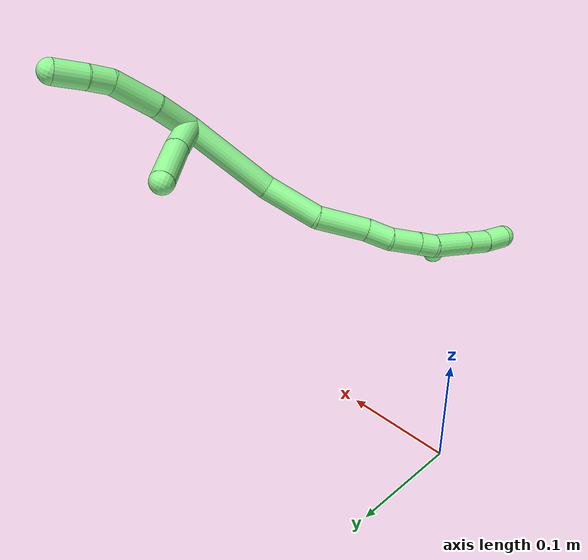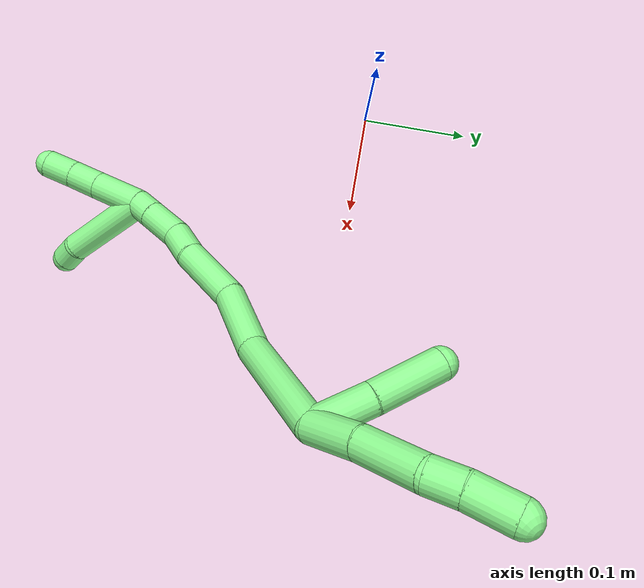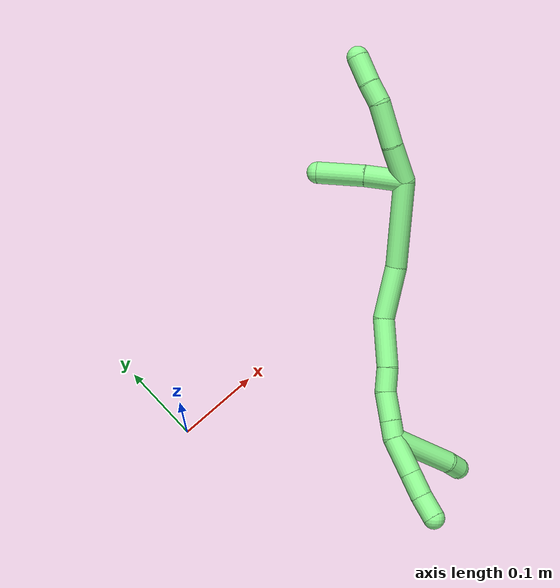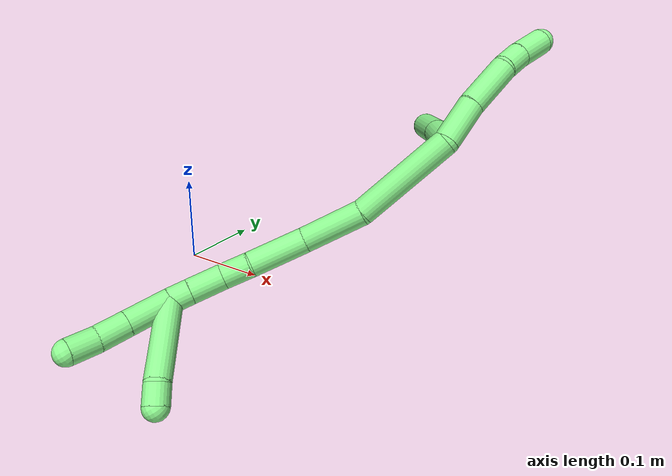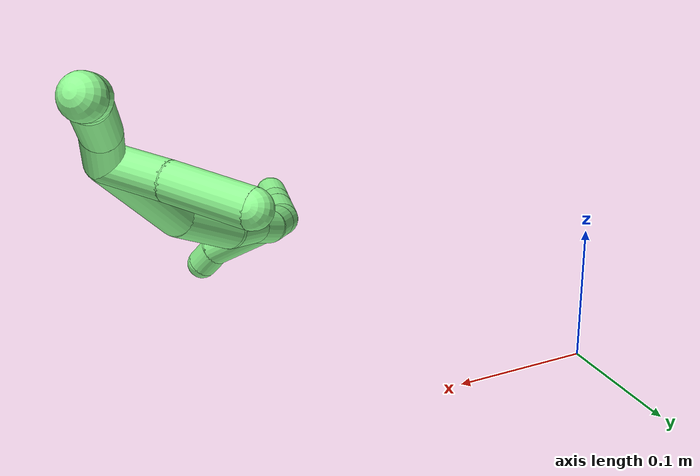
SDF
<sdf version="1.7">
 <world name="default">
  <model name="13">
   <static>0</static>
   <link name="13">
    <collision name="collision-cylinder-e_1_2_8">
     <pose>-0.00568 0.008277 0.019201 -0.407004 -0.26526 0.055048</pose>
     <geometry><cylinder><radius>0.0125</radius><length>0.043334</length></cylinder></geometry>
     <surface>
      <friction><ode><mu>1.16</mu><mu2>1.16</mu2><slip1>0</slip1><slip2>0</slip2></ode></friction>
      <contact><ode><kp>1e+06</kp><kd>1</kd><max_vel>0</max_vel><min_depth>0.001</min_depth></ode></contact>
     </surface>
    </collision>
    <visual name="visual-cylinder-e_1_2_8">
     <pose>-0.00568 0.008277 0.019201 -0.407004 -0.26526 0.055048</pose>
     <geometry><cylinder><radius>0.0125</radius><length>0.043334</length></cylinder></geometry>
     <material><ambient>0.564706 0.984314 0.572549 1</ambient></material>
    </visual>
    <collision name="collision-cylinder-e_2_8_9">
     <pose>-0.015317 0.025007 0.061554 -0.350073 -0.159155 0.028204</pose>
     <geometry><cylinder><radius>0.0125</radius><length>0.049923</length></cylinder></geometry>
     <surface>
      <friction><ode><mu>1.16</mu><mu2>1.16</mu2><slip1>0</slip1><slip2>0</slip2></ode></friction>
      <contact><ode><kp>1e+06</kp><kd>1</kd><max_vel>0</max_vel><min_depth>0.001</min_depth></ode></contact>
     </surface>
    </collision>
    <visual name="visual-cylinder-e_2_8_9">
     <pose>-0.015317 0.025007 0.061554 -0.350073 -0.159155 0.028204</pose>
     <geometry><cylinder><radius>0.0125</radius><length>0.049923</length></cylinder></geometry>
     <material><ambient>0.564706 0.984314 0.572549 1</ambient></material>
    </visual>
    <collision name="collision-cylinder-e_3_9_10">
     <pose>-0.018282 0.039383 0.095146 -0.516027 0.082336 -0.02174</pose>
     <geometry><cylinder><radius>0.0125</radius><length>0.024089</length></cylinder></geometry>
     <surface>
      <friction><ode><mu>1.16</mu><mu2>1.16</mu2><slip1>0</slip1><slip2>0</slip2></ode></friction>
      <contact><ode><kp>1e+06</kp><kd>1</kd><max_vel>0</max_vel><min_depth>0.001</min_depth></ode></contact>
     </surface>
    </collision>
    <visual name="visual-cylinder-e_3_9_10">
     <pose>-0.018282 0.039383 0.095146 -0.516027 0.082336 -0.02174</pose>
     <geometry><cylinder><radius>0.0125</radius><length>0.024089</length></cylinder></geometry>
     <material><ambient>0.564706 0.984314 0.572549 1</ambient></material>
    </visual>
    <collision name="collision-cylinder-e_4_10_6">
     <pose>-0.014629 0.052081 0.120201 -0.434086 0.163769 -0.036191</pose>
     <geometry><cylinder><radius>0.0125</radius><length>0.032654</length></cylinder></geometry>
     <surface>
      <friction><ode><mu>1.16</mu><mu2>1.16</mu2><slip1>0</slip1><slip2>0</slip2></ode></friction>
      <contact><ode><kp>1e+06</kp><kd>1</kd><max_vel>0</max_vel><min_depth>0.001</min_depth></ode></contact>
     </surface>
    </collision>
    <visual name="visual-cylinder-e_4_10_6">
     <pose>-0.014629 0.052081 0.120201 -0.434086 0.163769 -0.036191</pose>
     <geometry><cylinder><radius>0.0125</radius><length>0.032654</length></cylinder></geometry>
     <material><ambient>0.564706 0.984314 0.572549 1</ambient></material>
    </visual>
    <collision name="collision-cylinder-e_1_2_11">
     <pose>0.00458 0.021912 0.002322 -1.4652 0.204929 -0.184479</pose>
     <geometry><cylinder><radius>0.0125</radius><length>0.045011</length></cylinder></geometry>
     <surface>
      <friction><ode><mu>1.16</mu><mu2>1.16</mu2><slip1>0</slip1><slip2>0</slip2></ode></friction>
      <contact><ode><kp>1e+06</kp><kd>1</kd><max_vel>0</max_vel><min_depth>0.001</min_depth></ode></contact>
     </surface>
    </collision>
    <visual name="visual-cylinder-e_1_2_11">
     <pose>0.00458 0.021912 0.002322 -1.4652 0.204929 -0.184479</pose>
     <geometry><cylinder><radius>0.0125</radius><length>0.045011</length></cylinder></geometry>
     <material><ambient>0.564706 0.984314 0.572549 1</ambient></material>
    </visual>
    <collision name="collision-cylinder-e_2_11_5">
     <pose>0.015357 0.070588 0.005748 -1.5296 0.227347 -0.218242</pose>
     <geometry><cylinder><radius>0.0125</radius><length>0.054989</length></cylinder></geometry>
     <surface>
      <friction><ode><mu>1.16</mu><mu2>1.16</mu2><slip1>0</slip1><slip2>0</slip2></ode></friction>
      <contact><ode><kp>1e+06</kp><kd>1</kd><max_vel>0</max_vel><min_depth>0.001</min_depth></ode></contact>
     </surface>
    </collision>
    <visual name="visual-cylinder-e_2_11_5">
     <pose>0.015357 0.070588 0.005748 -1.5296 0.227347 -0.218242</pose>
     <geometry><cylinder><radius>0.0125</radius><length>0.054989</length></cylinder></geometry>
     <material><ambient>0.564706 0.984314 0.572549 1</ambient></material>
    </visual>
    <collision name="collision-cylinder-e_1_2_12">
     <pose>0.010299 0.001411 -0.049012 -3.1128 0.207033 -2.8662</pose>
     <geometry><cylinder><radius>0.0125</radius><length>0.100204</length></cylinder></geometry>
     <surface>
      <friction><ode><mu>1.16</mu><mu2>1.16</mu2><slip1>0</slip1><slip2>0</slip2></ode></friction>
      <contact><ode><kp>1e+06</kp><kd>1</kd><max_vel>0</max_vel><min_depth>0.001</min_depth></ode></contact>
     </surface>
    </collision>
    <visual name="visual-cylinder-e_1_2_12">
     <pose>0.010299 0.001411 -0.049012 -3.1128 0.207033 -2.8662</pose>
     <geometry><cylinder><radius>0.0125</radius><length>0.100204</length></cylinder></geometry>
     <material><ambient>0.564706 0.984314 0.572549 1</ambient></material>
    </visual>
    <collision name="collision-cylinder-e_2_12_13">
     <pose>0.020945 0.008719 -0.128198 -2.94861 0.011288 -0.116489</pose>
     <geometry><cylinder><radius>0.0125</radius><length>0.061494</length></cylinder></geometry>
     <surface>
      <friction><ode><mu>1.16</mu><mu2>1.16</mu2><slip1>0</slip1><slip2>0</slip2></ode></friction>
      <contact><ode><kp>1e+06</kp><kd>1</kd><max_vel>0</max_vel><min_depth>0.001</min_depth></ode></contact>
     </surface>
    </collision>
    <visual name="visual-cylinder-e_2_12_13">
     <pose>0.020945 0.008719 -0.128198 -2.94861 0.011288 -0.116489</pose>
     <geometry><cylinder><radius>0.0125</radius><length>0.061494</length></cylinder></geometry>
     <material><ambient>0.564706 0.984314 0.572549 1</ambient></material>
    </visual>
    <collision name="collision-cylinder-e_3_13_14">
     <pose>0.016526 0.011888 -0.18607 3.04344 -0.169585 -2.09365</pose>
     <geometry><cylinder><radius>0.0125</radius><length>0.056475</length></cylinder></geometry>
     <surface>
      <friction><ode><mu>1.16</mu><mu2>1.16</mu2><slip1>0</slip1><slip2>0</slip2></ode></friction>
      <contact><ode><kp>1e+06</kp><kd>1</kd><max_vel>0</max_vel><min_depth>0.001</min_depth></ode></contact>
     </surface>
    </collision>
    <visual name="visual-cylinder-e_3_13_14">
     <pose>0.016526 0.011888 -0.18607 3.04344 -0.169585 -2.09365</pose>
     <geometry><cylinder><radius>0.0125</radius><length>0.056475</length></cylinder></geometry>
     <material><ambient>0.564706 0.984314 0.572549 1</ambient></material>
    </visual>
    <collision name="collision-cylinder-e_4_14_15">
     <pose>0.010256 0.009921 -0.227781 -3.08738 -0.106762 2.20236</pose>
     <geometry><cylinder><radius>0.0125</radius><length>0.028226</length></cylinder></geometry>
     <surface>
      <friction><ode><mu>1.16</mu><mu2>1.16</mu2><slip1>0</slip1><slip2>0</slip2></ode></friction>
      <contact><ode><kp>1e+06</kp><kd>1</kd><max_vel>0</max_vel><min_depth>0.001</min_depth></ode></contact>
     </surface>
    </collision>
    <visual name="visual-cylinder-e_4_14_15">
     <pose>0.010256 0.009921 -0.227781 -3.08738 -0.106762 2.20236</pose>
     <geometry><cylinder><radius>0.0125</radius><length>0.028226</length></cylinder></geometry>
     <material><ambient>0.564706 0.984314 0.572549 1</ambient></material>
    </visual>
    <collision name="collision-cylinder-e_5_15_16">
     <pose>0.005148 0.007489 -0.257858 2.94541 -0.216592 -1.67028</pose>
     <geometry><cylinder><radius>0.0125</radius><length>0.033541</length></cylinder></geometry>
     <surface>
      <friction><ode><mu>1.16</mu><mu2>1.16</mu2><slip1>0</slip1><slip2>0</slip2></ode></friction>
      <contact><ode><kp>1e+06</kp><kd>1</kd><max_vel>0</max_vel><min_depth>0.001</min_depth></ode></contact>
     </surface>
    </collision>
    <visual name="visual-cylinder-e_5_15_16">
     <pose>0.005148 0.007489 -0.257858 2.94541 -0.216592 -1.67028</pose>
     <geometry><cylinder><radius>0.0125</radius><length>0.033541</length></cylinder></geometry>
     <material><ambient>0.564706 0.984314 0.572549 1</ambient></material>
    </visual>
    <collision name="collision-cylinder-e_6_16_1">
     <pose>-0.000494 0.002421 -0.283562 2.94948 -0.204625 -1.63426</pose>
     <geometry><cylinder><radius>0.0125</radius><length>0.02006</length></cylinder></geometry>
     <surface>
      <friction><ode><mu>1.16</mu><mu2>1.16</mu2><slip1>0</slip1><slip2>0</slip2></ode></friction>
      <contact><ode><kp>1e+06</kp><kd>1</kd><max_vel>0</max_vel><min_depth>0.001</min_depth></ode></contact>
     </surface>
    </collision>
    <visual name="visual-cylinder-e_6_16_1">
     <pose>-0.000494 0.002421 -0.283562 2.94948 -0.204625 -1.63426</pose>
     <geometry><cylinder><radius>0.0125</radius><length>0.02006</length></cylinder></geometry>
     <material><ambient>0.564706 0.984314 0.572549 1</ambient></material>
    </visual>
    <collision name="collision-cylinder-e_1_1_17">
     <pose>-0.008608 -0.009123 -0.311989 2.66627 -0.280022 -1.05385</pose>
     <geometry><cylinder><radius>0.0125</radius><length>0.043972</length></cylinder></geometry>
     <surface>
      <friction><ode><mu>1.16</mu><mu2>1.16</mu2><slip1>0</slip1><slip2>0</slip2></ode></friction>
      <contact><ode><kp>1e+06</kp><kd>1</kd><max_vel>0</max_vel><min_depth>0.001</min_depth></ode></contact>
     </surface>
    </collision>
    <visual name="visual-cylinder-e_1_1_17">
     <pose>-0.008608 -0.009123 -0.311989 2.66627 -0.280022 -1.05385</pose>
     <geometry><cylinder><radius>0.0125</radius><length>0.043972</length></cylinder></geometry>
     <material><ambient>0.564706 0.984314 0.572549 1</ambient></material>
    </visual>
    <collision name="collision-cylinder-e_2_17_18">
     <pose>-0.018648 -0.025028 -0.343022 2.67063 -0.28079 -1.06462</pose>
     <geometry><cylinder><radius>0.0125</radius><length>0.028603</length></cylinder></geometry>
     <surface>
      <friction><ode><mu>1.16</mu><mu2>1.16</mu2><slip1>0</slip1><slip2>0</slip2></ode></friction>
      <contact><ode><kp>1e+06</kp><kd>1</kd><max_vel>0</max_vel><min_depth>0.001</min_depth></ode></contact>
     </surface>
    </collision>
    <visual name="visual-cylinder-e_2_17_18">
     <pose>-0.018648 -0.025028 -0.343022 2.67063 -0.28079 -1.06462</pose>
     <geometry><cylinder><radius>0.0125</radius><length>0.028603</length></cylinder></geometry>
     <material><ambient>0.564706 0.984314 0.572549 1</ambient></material>
    </visual>
    <collision name="collision-cylinder-e_3_18_4">
     <pose>-0.027967 -0.037947 -0.365976 2.58352 -0.401259 -1.23455</pose>
     <geometry><cylinder><radius>0.0125</radius><length>0.027425</length></cylinder></geometry>
     <surface>
      <friction><ode><mu>1.16</mu><mu2>1.16</mu2><slip1>0</slip1><slip2>0</slip2></ode></friction>
      <contact><ode><kp>1e+06</kp><kd>1</kd><max_vel>0</max_vel><min_depth>0.001</min_depth></ode></contact>
     </surface>
    </collision>
    <visual name="visual-cylinder-e_3_18_4">
     <pose>-0.027967 -0.037947 -0.365976 2.58352 -0.401259 -1.23455</pose>
     <geometry><cylinder><radius>0.0125</radius><length>0.027425</length></cylinder></geometry>
     <material><ambient>0.564706 0.984314 0.572549 1</ambient></material>
    </visual>
    <collision name="collision-cylinder-e_1_1_19">
     <pose>0.010938 -0.033525 -0.308863 2.00165 0.344861 0.530649</pose>
     <geometry><cylinder><radius>0.0125</radius><length>0.079689</length></cylinder></geometry>
     <surface>
      <friction><ode><mu>1.16</mu><mu2>1.16</mu2><slip1>0</slip1><slip2>0</slip2></ode></friction>
      <contact><ode><kp>1e+06</kp><kd>1</kd><max_vel>0</max_vel><min_depth>0.001</min_depth></ode></contact>
     </surface>
    </collision>
    <visual name="visual-cylinder-e_1_1_19">
     <pose>0.010938 -0.033525 -0.308863 2.00165 0.344861 0.530649</pose>
     <geometry><cylinder><radius>0.0125</radius><length>0.079689</length></cylinder></geometry>
     <material><ambient>0.564706 0.984314 0.572549 1</ambient></material>
    </visual>
    <collision name="collision-cylinder-e_2_19_3">
     <pose>0.030097 -0.074649 -0.329112 2.14754 0.594545 1.0282</pose>
     <geometry><cylinder><radius>0.0125</radius><length>0.020311</length></cylinder></geometry>
     <surface>
      <friction><ode><mu>1.16</mu><mu2>1.16</mu2><slip1>0</slip1><slip2>0</slip2></ode></friction>
      <contact><ode><kp>1e+06</kp><kd>1</kd><max_vel>0</max_vel><min_depth>0.001</min_depth></ode></contact>
     </surface>
    </collision>
    <visual name="visual-cylinder-e_2_19_3">
     <pose>0.030097 -0.074649 -0.329112 2.14754 0.594545 1.0282</pose>
     <geometry><cylinder><radius>0.0125</radius><length>0.020311</length></cylinder></geometry>
     <material><ambient>0.564706 0.984314 0.572549 1</ambient></material>
    </visual>
    <collision name="collision-sphere-3">
     <pose>0.035785 -0.081701 -0.3337 0 -0 0</pose>
     <geometry><sphere><radius>0.0125</radius></sphere></geometry>
     <surface>
      <friction><ode><mu>1.16</mu><mu2>1.16</mu2><slip1>0</slip1><slip2>0</slip2></ode></friction>
      <contact><ode><kp>1e+06</kp><kd>1</kd><max_vel>0</max_vel><min_depth>0.001</min_depth></ode></contact>
     </surface>
    </collision>
    <visual name="visual-sphere-3">
     <pose>0.035785 -0.081701 -0.3337 0 -0 0</pose>
     <geometry><sphere><radius>0.0125</radius></sphere></geometry>
     <material><ambient>0.564706 0.984314 0.572549 1</ambient></material>
    </visual>
    <collision name="collision-sphere-19">
     <pose>0.024408 -0.067597 -0.324524 0 -0 0</pose>
     <geometry><sphere><radius>0.0125</radius></sphere></geometry>
     <surface>
      <friction><ode><mu>1.16</mu><mu2>1.16</mu2><slip1>0</slip1><slip2>0</slip2></ode></friction>
      <contact><ode><kp>1e+06</kp><kd>1</kd><max_vel>0</max_vel><min_depth>0.001</min_depth></ode></contact>
     </surface>
    </collision>
    <visual name="visual-sphere-19">
     <pose>0.024408 -0.067597 -0.324524 0 -0 0</pose>
     <geometry><sphere><radius>0.0125</radius></sphere></geometry>
     <material><ambient>0.564706 0.984314 0.572549 1</ambient></material>
    </visual>
    <collision name="collision-sphere-11">
     <pose>0.00916 0.043824 0.004645 0 -0 0</pose>
     <geometry><sphere><radius>0.0125</radius></sphere></geometry>
     <surface>
      <friction><ode><mu>1.16</mu><mu2>1.16</mu2><slip1>0</slip1><slip2>0</slip2></ode></friction>
      <contact><ode><kp>1e+06</kp><kd>1</kd><max_vel>0</max_vel><min_depth>0.001</min_depth></ode></contact>
     </surface>
    </collision>
    <visual name="visual-sphere-11">
     <pose>0.00916 0.043824 0.004645 0 -0 0</pose>
     <geometry><sphere><radius>0.0125</radius></sphere></geometry>
     <material><ambient>0.564706 0.984314 0.572549 1</ambient></material>
    </visual>
    <collision name="collision-sphere-6">
     <pose>-0.011968 0.058856 0.134815 0 -0 0</pose>
     <geometry><sphere><radius>0.0125</radius></sphere></geometry>
     <surface>
      <friction><ode><mu>1.16</mu><mu2>1.16</mu2><slip1>0</slip1><slip2>0</slip2></ode></friction>
      <contact><ode><kp>1e+06</kp><kd>1</kd><max_vel>0</max_vel><min_depth>0.001</min_depth></ode></contact>
     </surface>
    </collision>
    <visual name="visual-sphere-6">
     <pose>-0.011968 0.058856 0.134815 0 -0 0</pose>
     <geometry><sphere><radius>0.0125</radius></sphere></geometry>
     <material><ambient>0.564706 0.984314 0.572549 1</ambient></material>
    </visual>
    <collision name="collision-sphere-10">
     <pose>-0.017291 0.045306 0.105586 0 -0 0</pose>
     <geometry><sphere><radius>0.0125</radius></sphere></geometry>
     <surface>
      <friction><ode><mu>1.16</mu><mu2>1.16</mu2><slip1>0</slip1><slip2>0</slip2></ode></friction>
      <contact><ode><kp>1e+06</kp><kd>1</kd><max_vel>0</max_vel><min_depth>0.001</min_depth></ode></contact>
     </surface>
    </collision>
    <visual name="visual-sphere-10">
     <pose>-0.017291 0.045306 0.105586 0 -0 0</pose>
     <geometry><sphere><radius>0.0125</radius></sphere></geometry>
     <material><ambient>0.564706 0.984314 0.572549 1</ambient></material>
    </visual>
    <collision name="collision-sphere-9">
     <pose>-0.019273 0.03346 0.084705 0 -0 0</pose>
     <geometry><sphere><radius>0.0125</radius></sphere></geometry>
     <surface>
      <friction><ode><mu>1.16</mu><mu2>1.16</mu2><slip1>0</slip1><slip2>0</slip2></ode></friction>
      <contact><ode><kp>1e+06</kp><kd>1</kd><max_vel>0</max_vel><min_depth>0.001</min_depth></ode></contact>
     </surface>
    </collision>
    <visual name="visual-sphere-9">
     <pose>-0.019273 0.03346 0.084705 0 -0 0</pose>
     <geometry><sphere><radius>0.0125</radius></sphere></geometry>
     <material><ambient>0.564706 0.984314 0.572549 1</ambient></material>
    </visual>
    <collision name="collision-sphere-2">
     <geometry><sphere><radius>0.0125</radius></sphere></geometry>
     <surface>
      <friction><ode><mu>1.16</mu><mu2>1.16</mu2><slip1>0</slip1><slip2>0</slip2></ode></friction>
      <contact><ode><kp>1e+06</kp><kd>1</kd><max_vel>0</max_vel><min_depth>0.001</min_depth></ode></contact>
     </surface>
    </collision>
    <visual name="visual-sphere-2">
     <geometry><sphere><radius>0.0125</radius></sphere></geometry>
     <material><ambient>0.564706 0.984314 0.572549 1</ambient></material>
    </visual>
    <collision name="collision-sphere-8">
     <pose>-0.011361 0.016554 0.038402 0 -0 0</pose>
     <geometry><sphere><radius>0.0125</radius></sphere></geometry>
     <surface>
      <friction><ode><mu>1.16</mu><mu2>1.16</mu2><slip1>0</slip1><slip2>0</slip2></ode></friction>
      <contact><ode><kp>1e+06</kp><kd>1</kd><max_vel>0</max_vel><min_depth>0.001</min_depth></ode></contact>
     </surface>
    </collision>
    <visual name="visual-sphere-8">
     <pose>-0.011361 0.016554 0.038402 0 -0 0</pose>
     <geometry><sphere><radius>0.0125</radius></sphere></geometry>
     <material><ambient>0.564706 0.984314 0.572549 1</ambient></material>
    </visual>
    <collision name="collision-sphere-5">
     <pose>0.021554 0.097352 0.006852 0 -0 0</pose>
     <geometry><sphere><radius>0.0125</radius></sphere></geometry>
     <surface>
      <friction><ode><mu>1.16</mu><mu2>1.16</mu2><slip1>0</slip1><slip2>0</slip2></ode></friction>
      <contact><ode><kp>1e+06</kp><kd>1</kd><max_vel>0</max_vel><min_depth>0.001</min_depth></ode></contact>
     </surface>
    </collision>
    <visual name="visual-sphere-5">
     <pose>0.021554 0.097352 0.006852 0 -0 0</pose>
     <geometry><sphere><radius>0.0125</radius></sphere></geometry>
     <material><ambient>0.564706 0.984314 0.572549 1</ambient></material>
    </visual>
    <collision name="collision-sphere-12">
     <pose>0.020598 0.002823 -0.098024 0 -0 0</pose>
     <geometry><sphere><radius>0.0125</radius></sphere></geometry>
     <surface>
      <friction><ode><mu>1.16</mu><mu2>1.16</mu2><slip1>0</slip1><slip2>0</slip2></ode></friction>
      <contact><ode><kp>1e+06</kp><kd>1</kd><max_vel>0</max_vel><min_depth>0.001</min_depth></ode></contact>
     </surface>
    </collision>
    <visual name="visual-sphere-12">
     <pose>0.020598 0.002823 -0.098024 0 -0 0</pose>
     <geometry><sphere><radius>0.0125</radius></sphere></geometry>
     <material><ambient>0.564706 0.984314 0.572549 1</ambient></material>
    </visual>
    <collision name="collision-sphere-13">
     <pose>0.021292 0.014616 -0.158372 0 -0 0</pose>
     <geometry><sphere><radius>0.0125</radius></sphere></geometry>
     <surface>
      <friction><ode><mu>1.16</mu><mu2>1.16</mu2><slip1>0</slip1><slip2>0</slip2></ode></friction>
      <contact><ode><kp>1e+06</kp><kd>1</kd><max_vel>0</max_vel><min_depth>0.001</min_depth></ode></contact>
     </surface>
    </collision>
    <visual name="visual-sphere-13">
     <pose>0.021292 0.014616 -0.158372 0 -0 0</pose>
     <geometry><sphere><radius>0.0125</radius></sphere></geometry>
     <material><ambient>0.564706 0.984314 0.572549 1</ambient></material>
    </visual>
    <collision name="collision-sphere-14">
     <pose>0.01176 0.009161 -0.213769 0 -0 0</pose>
     <geometry><sphere><radius>0.0125</radius></sphere></geometry>
     <surface>
      <friction><ode><mu>1.16</mu><mu2>1.16</mu2><slip1>0</slip1><slip2>0</slip2></ode></friction>
      <contact><ode><kp>1e+06</kp><kd>1</kd><max_vel>0</max_vel><min_depth>0.001</min_depth></ode></contact>
     </surface>
    </collision>
    <visual name="visual-sphere-14">
     <pose>0.01176 0.009161 -0.213769 0 -0 0</pose>
     <geometry><sphere><radius>0.0125</radius></sphere></geometry>
     <material><ambient>0.564706 0.984314 0.572549 1</ambient></material>
    </visual>
    <collision name="collision-sphere-15">
     <pose>0.008752 0.010682 -0.241793 0 -0 0</pose>
     <geometry><sphere><radius>0.0125</radius></sphere></geometry>
     <surface>
      <friction><ode><mu>1.16</mu><mu2>1.16</mu2><slip1>0</slip1><slip2>0</slip2></ode></friction>
      <contact><ode><kp>1e+06</kp><kd>1</kd><max_vel>0</max_vel><min_depth>0.001</min_depth></ode></contact>
     </surface>
    </collision>
    <visual name="visual-sphere-15">
     <pose>0.008752 0.010682 -0.241793 0 -0 0</pose>
     <geometry><sphere><radius>0.0125</radius></sphere></geometry>
     <material><ambient>0.564706 0.984314 0.572549 1</ambient></material>
    </visual>
    <collision name="collision-sphere-16">
     <pose>0.001544 0.004297 -0.273922 0 -0 0</pose>
     <geometry><sphere><radius>0.0125</radius></sphere></geometry>
     <surface>
      <friction><ode><mu>1.16</mu><mu2>1.16</mu2><slip1>0</slip1><slip2>0</slip2></ode></friction>
      <contact><ode><kp>1e+06</kp><kd>1</kd><max_vel>0</max_vel><min_depth>0.001</min_depth></ode></contact>
     </surface>
    </collision>
    <visual name="visual-sphere-16">
     <pose>0.001544 0.004297 -0.273922 0 -0 0</pose>
     <geometry><sphere><radius>0.0125</radius></sphere></geometry>
     <material><ambient>0.564706 0.984314 0.572549 1</ambient></material>
    </visual>
    <collision name="collision-sphere-1">
     <pose>-0.002532 0.000546 -0.293202 0 -0 0</pose>
     <geometry><sphere><radius>0.0125</radius></sphere></geometry>
     <surface>
      <friction><ode><mu>1.16</mu><mu2>1.16</mu2><slip1>0</slip1><slip2>0</slip2></ode></friction>
      <contact><ode><kp>1e+06</kp><kd>1</kd><max_vel>0</max_vel><min_depth>0.001</min_depth></ode></contact>
     </surface>
    </collision>
    <visual name="visual-sphere-1">
     <pose>-0.002532 0.000546 -0.293202 0 -0 0</pose>
     <geometry><sphere><radius>0.0125</radius></sphere></geometry>
     <material><ambient>0.564706 0.984314 0.572549 1</ambient></material>
    </visual>
    <collision name="collision-sphere-18">
     <pose>-0.022611 -0.031263 -0.355268 0 -0 0</pose>
     <geometry><sphere><radius>0.0125</radius></sphere></geometry>
     <surface>
      <friction><ode><mu>1.16</mu><mu2>1.16</mu2><slip1>0</slip1><slip2>0</slip2></ode></friction>
      <contact><ode><kp>1e+06</kp><kd>1</kd><max_vel>0</max_vel><min_depth>0.001</min_depth></ode></contact>
     </surface>
    </collision>
    <visual name="visual-sphere-18">
     <pose>-0.022611 -0.031263 -0.355268 0 -0 0</pose>
     <geometry><sphere><radius>0.0125</radius></sphere></geometry>
     <material><ambient>0.564706 0.984314 0.572549 1</ambient></material>
    </visual>
    <collision name="collision-sphere-17">
     <pose>-0.014684 -0.018792 -0.330777 0 -0 0</pose>
     <geometry><sphere><radius>0.0125</radius></sphere></geometry>
     <surface>
      <friction><ode><mu>1.16</mu><mu2>1.16</mu2><slip1>0</slip1><slip2>0</slip2></ode></friction>
      <contact><ode><kp>1e+06</kp><kd>1</kd><max_vel>0</max_vel><min_depth>0.001</min_depth></ode></contact>
     </surface>
    </collision>
    <visual name="visual-sphere-17">
     <pose>-0.014684 -0.018792 -0.330777 0 -0 0</pose>
     <geometry><sphere><radius>0.0125</radius></sphere></geometry>
     <material><ambient>0.564706 0.984314 0.572549 1</ambient></material>
    </visual>
    <collision name="collision-sphere-4">
     <pose>-0.033322 -0.044632 -0.376684 0 -0 0</pose>
     <geometry><sphere><radius>0.0125</radius></sphere></geometry>
     <surface>
      <friction><ode><mu>1.16</mu><mu2>1.16</mu2><slip1>0</slip1><slip2>0</slip2></ode></friction>
      <contact><ode><kp>1e+06</kp><kd>1</kd><max_vel>0</max_vel><min_depth>0.001</min_depth></ode></contact>
     </surface>
    </collision>
    <visual name="visual-sphere-4">
     <pose>-0.033322 -0.044632 -0.376684 0 -0 0</pose>
     <geometry><sphere><radius>0.0125</radius></sphere></geometry>
     <material><ambient>0.564706 0.984314 0.572549 1</ambient></material>
    </visual>
    <inertial>
     <pose>0.003508 0.006277 -0.131189 0 -0 0</pose>
     <mass>0.75</mass>
     <inertia>
      <ixx>-1.4e-05</ixx>
      <ixy>0</ixy>
      <ixz>0</ixz>
      <iyy>5.3e-05</iyy>
      <iyz>0</iyz>
      <izz>-4.2e-05</izz>
     </inertia>
    </inertial>
   </link>
   <pose>0.33996 -0.006591 0.208206 0.095003 1.06348 0.890936</pose>
  </model>
 </world>
</sdf>
